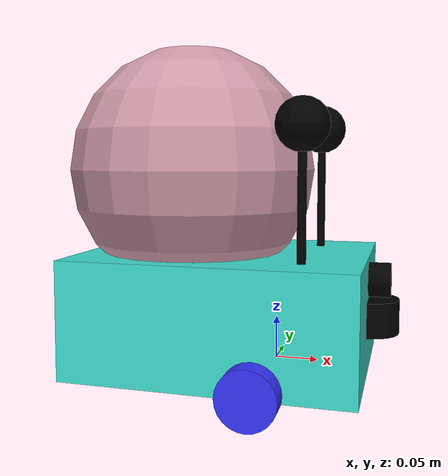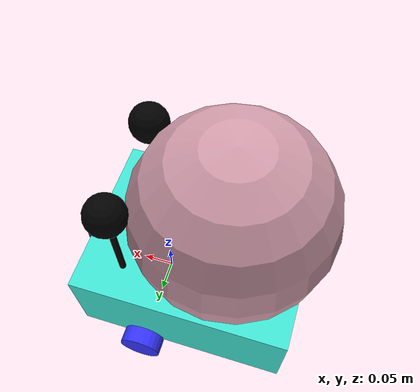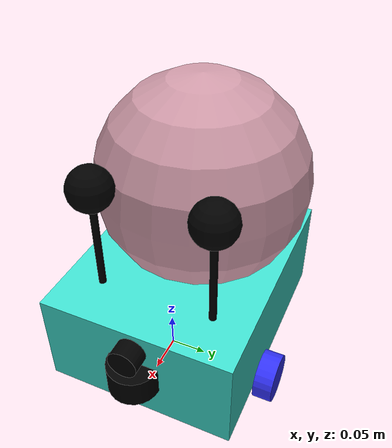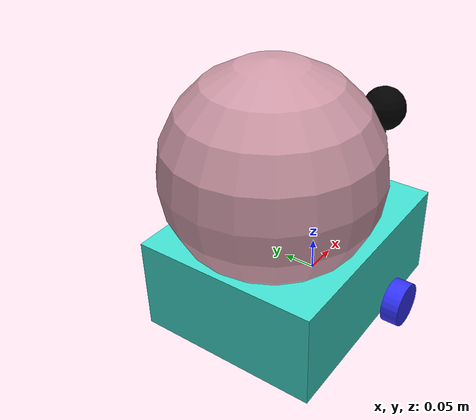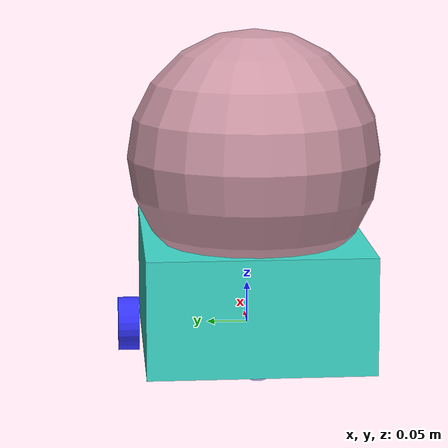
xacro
<?xml version="1.0"?>
<robot name='robot' xmlns:xacro="http://ros.org/wiki/xacro">

    <xacro:include filename="$(find robot_description)/urdf/gazebo.urdf.xacro" />
    <!--xacro:include
    filename="$(find robot_description)/urdf/lidar.urdf.xacro" /-->
    <!--xacro:include
    filename="$(find robot_description)/urdf/depth.urdf.xacro" /-->

    <xacro:property name="chassis_length" value="0.335" />
    <xacro:property name="chassis_width" value="0.265" />
    <xacro:property name="chassis_height" value="0.138" />
    <xacro:property name="wheel_radius" value="0.033"/>
    <xacro:property name="wheel_thickness" value="0.026"/>
    <xacro:property name="wheel_mass" value="0.05"/>
    <xacro:property name="wheel_offset_x" value="0.226"/>
    <xacro:property name="wheel_offset_y" value="0.1485"/>
    <xacro:property name="wheel_offset_z" value="0.01"/>
    <xacro:property name="caster_wheel_radius" value="0.03" />
    <xacro:property name="caster_wheel_mass" value="0.01" />
    <xacro:property name="caster_wheel_offset_x" value="0.075" />
    <xacro:property name="caster_wheel_offset_z"
    value="${wheel_offset_z - wheel_radius + caster_wheel_radius}" />
    <xacro:property name="mass" value="1.0" />

    <xacro:property name="antenna_radius" value="0.005"/>
    <xacro:property name="antenna_length" value="0.15"/>
    <xacro:property name="antenna_mass" value="0.01"/>
    <xacro:property name="antenna_color" value="black"/>

    <!-- Координаты установки антенн относительно корпуса -->
    <xacro:property name="antenna1_x" value="${chassis_length * 0.8}"/>  <!-- Задняя часть корпуса -->
    <xacro:property name="antenna1_y" value="${chassis_width * 0.3}"/>   <!-- Правая сторона -->
    <xacro:property name="antenna1_z" value="${chassis_height}"/>        <!-- Верх корпуса -->

    <xacro:property name="antenna2_x" value="${chassis_length * 0.8}"/>  <!-- Задняя часть корпуса -->
    <xacro:property name="antenna2_y" value="${-chassis_width * 0.3}"/>  <!-- Левая сторона -->
    <xacro:property name="antenna2_z" value="${chassis_height}"/>

    <xacro:property name="laser_radius" value="0.035" />
    <xacro:property name="laser_length" value="0.04" />

    <xacro:property name="depth_cam_radius" value="0.02" />
    <xacro:property name="depth_cam_length" value="0.025" />

    <xacro:property name="imu_length" value="0.03" />
    <xacro:property name="imu_width" value="0.03" />
    <xacro:property name="imu_height" value="0.01" />

    <material name="white">
        <color rgba="0.71 0.75 1 1" />
    </material>

    <material name="rose">
        <color rgba="0.812 0.604 0.659 1" />
    </material>

    <material name="orange">
        <color rgba="0.25 0.88 0.82 1" />  <!-- светло-бирюзовый / морская волна -->
    </material>

    <material name="blue">
        <color rgba="0.2 0.2 1 1"/>
    </material>

    <material name="black">
        <color rgba="0 0 0 1" />
    </material>

    <material name="red">
        <color rgba="1 0 0 1" />
    </material>

    <link name="base_link">
    </link>

    <link name="base_footprint">
    </link>

    <joint name="base_footprint_joint" type="fixed">
    <parent link="base_link" />
    <child link="base_footprint" />
    <origin xyz="0 0 -0.138" rpy="0 0 0" />
    </joint>

    <joint name="chassis_joint" type="fixed">
    <parent link="base_link" />
    <child link="chassis" />
    <origin xyz="${-wheel_offset_x} 0 ${-wheel_offset_z}" />
    </joint>

    <link name='chassis'>

    <inertial>
        <origin xyz="${chassis_length/2} 0 ${chassis_height/2}" rpy="0 0 0" />
        <mass value="${mass}" />
        <inertia ixx="${(1/12) * mass * (chassis_width*chassis_width+chassis_height*chassis_height)}"
        ixy="0.0" ixz="0.0"
        iyy="${(1/12) * mass * (chassis_length*chassis_length+chassis_height*chassis_height)}"
        iyz="0.0"
        izz="${(1/12) * mass * (chassis_length*chassis_length+chassis_width*chassis_width)}" />
    </inertial>
    <visual>
        <origin xyz="${chassis_length/2} 0 ${chassis_height/2}" />
        <geometry>
        <box size="${chassis_length} ${chassis_width} ${chassis_height}" />
        </geometry>
        <material name="orange" />
    </visual>
    <collision>
        <origin xyz="${chassis_length/2} 0 ${chassis_height/2}" />
        <geometry>
        <box size="${chassis_length} ${chassis_width} ${chassis_height}" />
        </geometry>
    </collision>
    </link>

    <gazebo reference="chassis">
    <material>Gazebo/SeaGreen</material>
    </gazebo>

    <joint name="left_wheel_joint" type="continuous">
    <parent link="base_link" />
    <child link="left_wheel" />
    <origin xyz="0 ${wheel_offset_y} 0" rpy="-${pi/2} 0 0" />
    <axis xyz="0 0 1" />
    </joint>

    <link name="left_wheel">
        <visual>
            <geometry>
                <cylinder radius="${wheel_radius}" length="${wheel_thickness}"/>
            </geometry>
            <material name="blue"/>
        </visual>
        <collision>
            <geometry>
                <sphere radius="${wheel_radius}"/>
            </geometry>
        </collision>
        <inertial>
            <origin xyz="0 0 0" rpy="0 0 0"/>
            <mass value="${wheel_mass}" />
            <inertia ixx="${(1/12) * wheel_mass * (3*wheel_radius*wheel_radius + wheel_thickness*wheel_thickness)}" ixy="0.0" ixz="0.0"
                     iyy="${(1/12) * wheel_mass * (3*wheel_radius*wheel_radius + wheel_thickness*wheel_thickness)}" iyz="0.0"
                     izz="${(1/2) * wheel_mass * (wheel_radius*wheel_radius)}" />
        </inertial>
    </link>

    <gazebo reference="left_wheel">
    <material>Gazebo/Blue</material>
    </gazebo>

    <joint name="right_wheel_joint" type="continuous">
    <parent link="base_link" />
    <child link="right_wheel" />
    <origin xyz="0 ${-wheel_offset_y} 0" rpy="${pi/2} 0 0" />
    <axis xyz="0 0 -1" />
    </joint>

    <link name="right_wheel">
        <visual>
            <geometry>
                <cylinder radius="${wheel_radius}" length="${wheel_thickness}"/>
            </geometry>
            <material name="blue"/>
        </visual>
        <collision>
            <geometry>
                <sphere radius="${wheel_radius}"/>
            </geometry>
        </collision>
        <inertial>
            <origin xyz="0 0 0" rpy="0 0 0"/>
            <mass value="${wheel_mass}" />
            <inertia ixx="${(1/12) * wheel_mass * (3*wheel_radius*wheel_radius + wheel_thickness*wheel_thickness)}" ixy="0.0" ixz="0.0"
                     iyy="${(1/12) * wheel_mass * (3*wheel_radius*wheel_radius + wheel_thickness*wheel_thickness)}" iyz="0.0"
                     izz="${(1/2) * wheel_mass * (wheel_radius*wheel_radius)}" />
        </inertial>
    </link>

    <gazebo reference="right_wheel">
    <material>Gazebo/Blue</material>
    </gazebo>

    <joint name="caster_wheel_joint" type="fixed">
    <parent link="chassis" />
    <child link="caster_wheel" />
    <origin xyz="${caster_wheel_offset_x} 0 ${caster_wheel_offset_z}" />
    </joint>

    <link name="caster_wheel">
    <visual>
        <geometry>
        <sphere radius="${caster_wheel_radius}" />
        </geometry>
        <material name="white" />
    </visual>
    <collision>
        <geometry>
        <sphere radius="${caster_wheel_radius}" />
        </geometry>
    </collision>
    <inertial>
        <origin xyz="0 0 0" rpy="0 0 0" />
        <mass value="${caster_wheel_mass}" />
        <inertia ixx="${(2/5) * caster_wheel_mass * (caster_wheel_radius*caster_wheel_radius)}"
        ixy="0.0" ixz="0.0"
        iyy="${(2/5) * caster_wheel_mass * (caster_wheel_radius*caster_wheel_radius)}" iyz="0.0"
        izz="${(2/5) * caster_wheel_mass * (caster_wheel_radius*caster_wheel_radius)}" />
    </inertial>
    </link>

    <gazebo reference="caster_wheel">
    <material>Gazebo/White</material>
    <mu1 value="0.001" />
    <mu2 value="0.001" />
    </gazebo>

    <!-- Первая антенна (правая) -->
    <link name="antenna_1">
    <inertial>
        <origin xyz="0 0 ${antenna_length/2}" rpy="0 0 0"/>
        <mass value="${antenna_mass}" />
        <inertia ixx="${(1/12) * antenna_mass * (3*antenna_radius*antenna_radius + antenna_length*antenna_length)}" ixy="0.0" ixz="0.0"
                    iyy="${(1/12) * antenna_mass * (3*antenna_radius*antenna_radius + antenna_length*antenna_length)}" iyz="0.0"
                    izz="${(1/2) * antenna_mass * antenna_radius*antenna_radius}" />
    </inertial>

    <visual>
        <origin xyz="0 0 ${antenna_length/2}" rpy="0 0 0"/>
        <geometry>
            <cylinder radius="${antenna_radius}" length="${antenna_length}"/>
        </geometry>
        <material name="${antenna_color}"/>
    </visual>

    <collision>
        <origin xyz="0 0 ${antenna_length/2}" rpy="0 0 0"/>
        <geometry>
            <cylinder radius="${antenna_radius}" length="${antenna_length}"/>
        </geometry>
    </collision>
    </link>

    <joint name="antenna_1_joint" type="fixed">
    <parent link="chassis"/>  <!-- Привязка к корпусу -->
    <child link="antenna_1"/>
    <origin xyz="${antenna1_x} ${antenna1_y} ${antenna1_z}" rpy="0 0 0"/>
    </joint>

    <!-- Вторая антенна (левая) -->
    <link name="antenna_2">
    <inertial>
        <origin xyz="0 0 ${antenna_length/2}" rpy="0 0 0"/>
        <mass value="${antenna_mass}" />
        <inertia ixx="${(1/12) * antenna_mass * (3*antenna_radius*antenna_radius + antenna_length*antenna_length)}" ixy="0.0" ixz="0.0"
                    iyy="${(1/12) * antenna_mass * (3*antenna_radius*antenna_radius + antenna_length*antenna_length)}" iyz="0.0"
                    izz="${(1/2) * antenna_mass * antenna_radius*antenna_radius}" />
    </inertial>

    <visual>
        <origin xyz="0 0 ${antenna_length/2}" rpy="0 0 0"/>
        <geometry>
            <cylinder radius="${antenna_radius}" length="${antenna_length}"/>
        </geometry>
        <material name="${antenna_color}"/>
    </visual>

    <collision>
        <origin xyz="0 0 ${antenna_length/2}" rpy="0 0 0"/>
        <geometry>
            <cylinder radius="${antenna_radius}" length="${antenna_length}"/>
        </geometry>
    </collision>
    </link>

    <joint name="antenna_2_joint" type="fixed">
    <parent link="chassis"/>  <!-- Привязка к корпусу -->
    <child link="antenna_2"/>
    <origin xyz="${antenna2_x} ${antenna2_y} ${antenna2_z}" rpy="0 0 0"/>
    </joint>

    <!-- Gazebo материалы для антенн -->
    <gazebo reference="antenna_1">
    <material>Gazebo/Black</material>
    </gazebo>

    <gazebo reference="antenna_2">
    <material>Gazebo/Black</material>
    </gazebo>

    <!-- Глаза на антеннах -->
    <link name="eye_left">
        <visual>
        <origin xyz="0 0 0.15" rpy="0 0 0"/>
        <geometry>
            <sphere radius="0.03"/>
        </geometry>
        <material name="black"/>
        </visual>
    </link>

    <joint name="eye_left_joint" type="fixed">
        <parent link="antenna_1"/>
        <child link="eye_left"/>
        <origin xyz="0 0 0" rpy="0 0 0"/>
    </joint>

    <link name="eye_right">
        <visual>
        <origin xyz="0 0 0.15" rpy="0 0 0"/>
        <geometry>
            <sphere radius="0.03"/>
        </geometry>
        <material name="black"/>
        </visual>
    </link>

    <joint name="eye_right_joint" type="fixed">
        <parent link="antenna_2"/>
        <child link="eye_right"/>
        <origin xyz="0 0 0" rpy="0 0 0"/>
    </joint>

        <!-- Сфера сверху -->
    <link name="body_sphere">
      <visual>
        <origin xyz="0.12 0 ${chassis_height + 0.1}" rpy="0 0 0"/>
        <geometry>
          <sphere radius="0.15"/>
        </geometry>
        <material name="rose"/>
      </visual>
      <collision>
        <origin xyz="0.1 0 ${chassis_height+ 0.1}" rpy="0 0 0"/>
        <geometry>
          <sphere radius="0.15"/>
        </geometry>
      </collision>
      <inertial>
        <mass value="0.5"/>
        <origin xyz="0.1 0 ${chassis_height + 0.1}" rpy="0 0 0"/>
        <inertia ixx="0.02" ixy="0" ixz="0" iyy="0.02" iyz="0" izz="0.02"/>
      </inertial>
    </link>

    <joint name="body_sphere_joint" type="fixed">
        <parent link="chassis"/>
        <child link="body_sphere"/>
        <origin xyz="0 0 0" rpy="0 0 0"/>
    </joint>

    <gazebo reference="body_sphere">
    <material>Gazebo/Rose</material>
    </gazebo>

      <link name="laser_frame">
    <visual>
      <geometry>
        <cylinder radius="${laser_radius}" length="${laser_length}" />
      </geometry>
      <material name="black" />
    </visual>
    <collision>
      <geometry>
        <cylinder radius="${laser_radius}" length="${laser_length}" />
      </geometry>
    </collision>
    <inertial>
      <mass value="0.1" />
      <inertia ixx="1e-3" ixy="0" ixz="0" iyy="1e-3" iyz="0" izz="1e-3" />
    </inertial>
  </link>

  <joint name="laser_joint" type="fixed">
    <parent link="chassis" />
    <child link="laser_frame" />
    <origin xyz="${chassis_length} 0 ${chassis_height/2}" rpy="0 0 0" />
  </joint>

  <gazebo reference="laser_frame">
    <sensor name='laser_frame' type='gpu_lidar'>
      <topic>
        scan</topic>
      <pose relative_to='laser_frame'>0 0 0 0 0 0</pose>
      <update_rate>
        5</update_rate>
      <ray>
        <scan>
          <horizontal>
            <samples>50</samples>
            <resolution>1</resolution>
            <min_angle>-1.396263</min_angle>
            <max_angle>1.396263</max_angle>
          </horizontal>
          <vertical>
            <samples>20</samples>
            <resolution>1</resolution>
            <min_angle>-0.65</min_angle>
            <max_angle>0.65</max_angle>
          </vertical>
        </scan>
        <range>
          <min>0.08</min>
          <max>10.0</max>
          <resolution>0.01</resolution>
        </range>
      </ray>
      <always_on>1</always_on>
      <visualize>
        true</visualize>
    </sensor>
  </gazebo>

  <link name="camera_link">
    <visual>
      <origin xyz="0 0 0" rpy="0 1.5708 0" />
      <geometry>
        <cylinder radius="${depth_cam_radius}" length="${depth_cam_length}" />
      </geometry>
      <material name="black" />
    </visual>
    <collision>
      <geometry>
        <cylinder radius="${depth_cam_radius}" length="${depth_cam_length}" />
      </geometry>
    </collision>
    <inertial>
      <mass value="0.1" />
      <inertia ixx="1e-3" ixy="0" ixz="0" iyy="1e-3" iyz="0" izz="1e-3" />
    </inertial>
  </link>

  <joint name="camera_joint" type="fixed">
    <parent link="chassis" />
    <child link="camera_link" />
    <origin
      xyz="${chassis_length + depth_cam_length/2} 0 ${chassis_height/2 + depth_cam_radius*2.1}"
      rpy="0 0 0" />
  </joint>

  <gazebo reference="camera_link">
    <sensor name="depth_camera" type="depth">
      <update_rate>6</update_rate>
      <always_on>1</always_on>
      <camera>
        <horizontal_fov>1.51843645</horizontal_fov>
        <image>
          <width>848</width>
          <height>480</height>
          <format>R_FLOAT32</format>
        </image>
        <clip>
          <near>0.1</near>
          <far>10</far>
        </clip>
        <lens>
          <intrinsics>
            <fx>421.61578369140625</fx>
            <fy>421.61578369140625</fy>
            <cx>422.2854309082031</cx>
            <cy>236.57237243652344</cy>
            <s>0</s>
          </intrinsics>
        </lens>
      </camera>
    </sensor>
  </gazebo>

  <link name="imu_link">
    <visual>
      <origin xyz="${imu_length/2} 0 ${imu_height/2}" />
      <geometry>
        <box size="${imu_length} ${imu_width} ${imu_height}" />
      </geometry>
      <material name="black" />
    </visual>
  </link>

  <joint name="imu_joint" type="fixed">
    <parent link="chassis" />
    <child link="imu_link" />
    <origin xyz="${wheel_offset_x} 0 ${wheel_offset_z}"
      rpy="0 0 0" />
  </joint>

  <gazebo reference="imu_link">
    <sensor name="imu_sensor" type="imu">
      <always_on>1</always_on>
      <update_rate>1</update_rate>
      <visualize>true</visualize>
      <topic>imu</topic>
    </sensor>
  </gazebo>

</robot>
